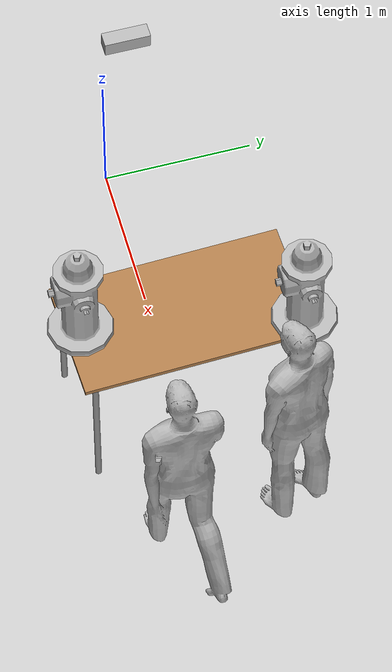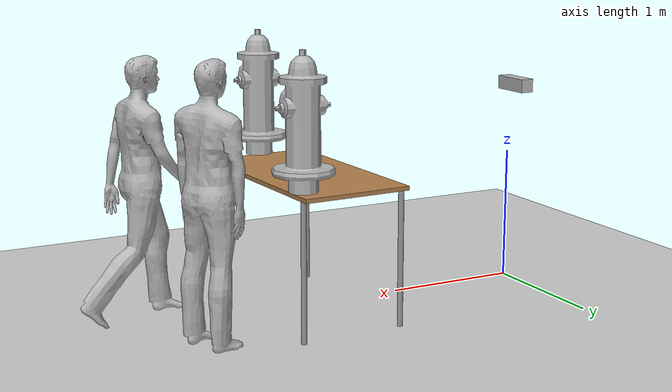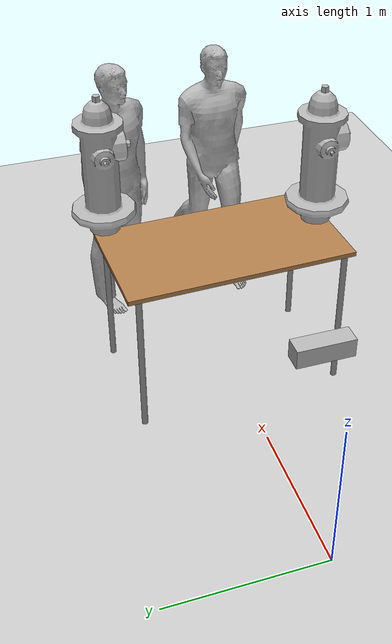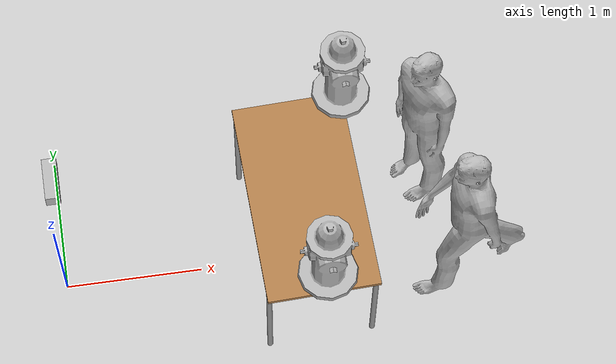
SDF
<sdf version="1.7">
 <world name="default">
  <model name="ground_plane">
   <static>1</static>
   <link name="link">
    <collision name="collision">
     <geometry><plane><normal>0 0 1</normal><size>100 100</size></plane></geometry>
     <surface>
      <contact><collide_bitmask>65535</collide_bitmask></contact>
      <friction><ode><mu>100</mu><mu2>50</mu2></ode></friction>
     </surface>
    </collision>
    <visual name="visual">
     <cast_shadows>0</cast_shadows>
     <geometry><plane><normal>0 0 1</normal><size>100 100</size></plane></geometry>
     <material>
      <script><uri>file://media/materials/scripts/gazebo.material</uri><name>Gazebo/Grey</name></script>
     </material>
    </visual>
   </link>
  </model>
  <light name="sun" type="directional">
   <pose>0 0 10 0 -0 0</pose>
   <diffuse>0.8 0.8 0.8 1</diffuse>
   <specular>0.2 0.2 0.2 1</specular>
   <attenuation>
    <range>1000</range>
    <constant>0.9</constant>
    <linear>0.01</linear>
    <quadratic>0.001</quadratic>
   </attenuation>
   <direction>-0.5 0.1 -0.9</direction>
   <spot><inner_angle>0</inner_angle><outer_angle>0</outer_angle><falloff>0</falloff></spot>
  </light>
  <model name="table">
   <static>1</static>
   <link name="link">
    <collision name="surface">
     <pose>0 0 1 0 -0 0</pose>
     <geometry><box><size>1.5 0.8 0.03</size></box></geometry>
     <surface><friction><ode><mu>0.6</mu><mu2>0.6</mu2></ode></friction></surface>
    </collision>
    <visual name="visual1">
     <pose>0 0 1 0 -0 0</pose>
     <geometry><box><size>1.5 0.8 0.03</size></box></geometry>
     <material>
      <script><uri>file://media/materials/scripts/gazebo.material</uri><name>Gazebo/Wood</name></script>
     </material>
    </visual>
    <collision name="front_left_leg">
     <pose>0.68 0.38 0.5 0 -0 0</pose>
     <geometry><cylinder><radius>0.02</radius><length>1</length></cylinder></geometry>
    </collision>
    <visual name="front_left_leg">
     <pose>0.68 0.38 0.5 0 -0 0</pose>
     <geometry><cylinder><radius>0.02</radius><length>1</length></cylinder></geometry>
     <material>
      <script><uri>file://media/materials/scripts/gazebo.material</uri><name>Gazebo/Grey</name></script>
     </material>
    </visual>
    <collision name="front_right_leg">
     <pose>0.68 -0.38 0.5 0 -0 0</pose>
     <geometry><cylinder><radius>0.02</radius><length>1</length></cylinder></geometry>
    </collision>
    <visual name="front_right_leg">
     <pose>0.68 -0.38 0.5 0 -0 0</pose>
     <geometry><cylinder><radius>0.02</radius><length>1</length></cylinder></geometry>
     <material>
      <script><uri>file://media/materials/scripts/gazebo.material</uri><name>Gazebo/Grey</name></script>
     </material>
    </visual>
    <collision name="back_right_leg">
     <pose>-0.68 -0.38 0.5 0 -0 0</pose>
     <geometry><cylinder><radius>0.02</radius><length>1</length></cylinder></geometry>
    </collision>
    <visual name="back_right_leg">
     <pose>-0.68 -0.38 0.5 0 -0 0</pose>
     <geometry><cylinder><radius>0.02</radius><length>1</length></cylinder></geometry>
     <material>
      <script><uri>file://media/materials/scripts/gazebo.material</uri><name>Gazebo/Grey</name></script>
     </material>
    </visual>
    <collision name="back_left_leg">
     <pose>-0.68 0.38 0.5 0 -0 0</pose>
     <geometry><cylinder><radius>0.02</radius><length>1</length></cylinder></geometry>
    </collision>
    <visual name="back_left_leg">
     <pose>-0.68 0.38 0.5 0 -0 0</pose>
     <geometry><cylinder><radius>0.02</radius><length>1</length></cylinder></geometry>
     <material>
      <script><uri>file://media/materials/scripts/gazebo.material</uri><name>Gazebo/Grey</name></script>
     </material>
    </visual>
   </link>
   <pose>1.7838 0.039521 0 0 -0 1.60643</pose>
  </model>
  <physics type="ode">
   <max_step_size>0.001</max_step_size>
   <real_time_factor>1</real_time_factor>
   <real_time_update_rate>1000</real_time_update_rate>
  </physics>
  <gravity>0 0 -9.81</gravity>
  <magnetic_field>6e-06 2.3e-05 -4.2e-05</magnetic_field>
  <atmosphere type="adiabatic"/>
  <scene><ambient>0.4 0.4 0.4 1</ambient><background>0.7 0.7 0.7 1</background><shadows>1</shadows></scene>
  <spherical_coordinates>
   <surface_model>EARTH_WGS84</surface_model>
   <latitude_deg>0</latitude_deg>
   <longitude_deg>0</longitude_deg>
   <elevation>0</elevation>
   <heading_deg>0</heading_deg>
  </spherical_coordinates>
  <model name="person_standing">
   <link name="link">
    <inertial>
     <pose>0 -0.1 0.95 0 -0 0</pose>
     <mass>80</mass>
     <inertia><ixx>24.88</ixx><ixy>0</ixy><ixz>0</ixz><iyy>25.73</iyy><iyz>0</iyz><izz>2.48</izz></inertia>
    </inertial>
    <collision name="bottom">
     <pose>0 -0.1 0.01 0 -0 0</pose>
     <geometry><box><size>0.5 0.35 0.02</size></box></geometry>
    </collision>
    <collision name="person">
     <pose>0 0 0.02 0.04 -0 0</pose>
     <geometry><mesh><uri>model://person_standing/meshes/standing.dae</uri></mesh></geometry>
    </collision>
    <visual name="visual">
     <pose>0 0 0.02 0.04 -0 0</pose>
     <geometry><mesh><uri>model://person_standing/meshes/standing.dae</uri></mesh></geometry>
    </visual>
   </link>
   <pose>2.78324 0.549363 0 -0 -1e-06 -1.17597</pose>
  </model>
  <model name="person_walking">
   <link name="link">
    <inertial>
     <pose>0 0 0.95 0 -0 0</pose>
     <mass>80</mass>
     <inertia><ixx>27.82</ixx><ixy>0</ixy><ixz>0</ixz><iyy>24.88</iyy><iyz>0</iyz><izz>4.57</izz></inertia>
    </inertial>
    <collision name="bottom">
     <pose>0 0 0.01 0 -0 0</pose>
     <geometry><box><size>0.35 0.75 0.02</size></box></geometry>
    </collision>
    <collision name="person">
     <pose>0 0 -0.02 0 -0 0</pose>
     <geometry><mesh><uri>model://person_walking/meshes/walking.dae</uri></mesh></geometry>
    </collision>
    <visual name="visual">
     <pose>0 0 -0.02 0 -0 0</pose>
     <geometry><mesh><uri>model://person_walking/meshes/walking.dae</uri></mesh></geometry>
    </visual>
   </link>
   <pose>2.93662 -0.265207 -1e-06 -2e-06 -1e-06 -1.52011</pose>
  </model>
  <model name="m2wr">
   <joint name="fixed" type="fixed">
    <pose relative_to="__model__">0 0 1 0 -0 0</pose>
    <parent>world</parent>
    <child>camera_optical</child>
   </joint>
   <link name="camera_optical">
    <pose relative_to="fixed">0 0 0 0 -0 0</pose>
    <inertial>
     <pose>0.05 0.15 0.05 0 -0 0</pose>
     <mass>1</mass>
     <inertia><ixx>1</ixx><ixy>0</ixy><ixz>0</ixz><iyy>1</iyy><iyz>0</iyz><izz>1</izz></inertia>
    </inertial>
    <collision name="camera_optical_collision">
     <pose>0.05 0.15 0.05 0 -0 0</pose>
     <geometry><box><size>0.1 0.3 0.1</size></box></geometry>
    </collision>
    <visual name="camera_optical_visual">
     <pose>0.05 0.15 0.05 0 -0 0</pose>
     <geometry><box><size>0.1 0.3 0.1</size></box></geometry>
    </visual>
    <sensor name="camera" type="depth">
     <update_rate>20</update_rate>
     <camera>
      <horizontal_fov>1.0472</horizontal_fov>
      <image><width>1280</width><height>720</height><format>B8G8R8</format></image>
      <clip><near>0.05</near><far>3</far></clip>
     </camera>
     <plugin name="rgbd_controller" filename="libgazebo_ros_openni_kinect.so">
      <baseline>0.2</baseline>
      <alwaysOn>1</alwaysOn>
      <updateRate>1.0</updateRate>
      <cameraName>camera_ir</cameraName>
      <imageTopicName>/camera/color/image_raw</imageTopicName>
      <cameraInfoTopicName>/camera/color/camera_info</cameraInfoTopicName>
      <depthImageTopicName>/camera/depth/image_raw</depthImageTopicName>
      <depthImageInfoTopicName>/camera/depth/camera_info</depthImageInfoTopicName>
      <pointCloudTopicName>/camera/depth/points</pointCloudTopicName>
      <frameName>camera_optical</frameName>
      <pointCloudCutoff>0.5</pointCloudCutoff>
      <pointCloudCutoffMax>3.0</pointCloudCutoffMax>
      <distortionK1>0.00000001</distortionK1>
      <distortionK2>0.00000001</distortionK2>
      <distortionK3>0.00000001</distortionK3>
      <distortionT1>0.00000001</distortionT1>
      <distortionT2>0.00000001</distortionT2>
      <CxPrime>0</CxPrime>
      <Cx>0</Cx>
      <Cy>0</Cy>
      <focalLength>0</focalLength>
      <hackBaseline>0</hackBaseline>
      <robotNamespace>/</robotNamespace>
     </plugin>
    </sensor>
   </link>
   <pose>0 0 0.5 0 -0 0</pose>
  </model>
  <model name="fire_hydrant">
   <static>1</static>
   <link name="link">
    <collision name="collision">
     <geometry><mesh><uri>model://fire_hydrant/meshes/fire_hydrant.dae</uri></mesh></geometry>
    </collision>
    <visual name="visual">
     <geometry><mesh><uri>model://fire_hydrant/meshes/fire_hydrant.dae</uri></mesh></geometry>
    </visual>
   </link>
   <pose>1.84133 -0.625909 1.0448 0 -0 0</pose>
  </model>
  <model name="fire_hydrant_0">
   <static>1</static>
   <link name="link">
    <collision name="collision">
     <geometry><mesh><uri>model://fire_hydrant/meshes/fire_hydrant.dae</uri></mesh></geometry>
    </collision>
    <visual name="visual">
     <geometry><mesh><uri>model://fire_hydrant/meshes/fire_hydrant.dae</uri></mesh></geometry>
    </visual>
   </link>
   <pose>2.13592 0.724865 1.05006 0 -0 0</pose>
  </model>
 </world>
</sdf>
